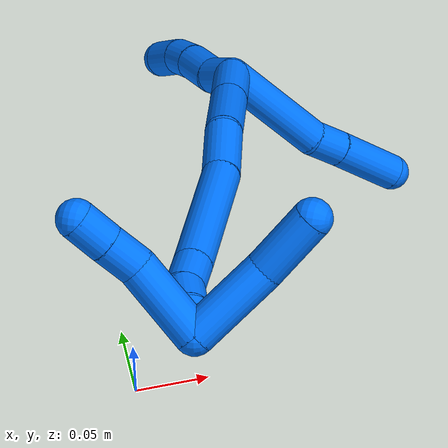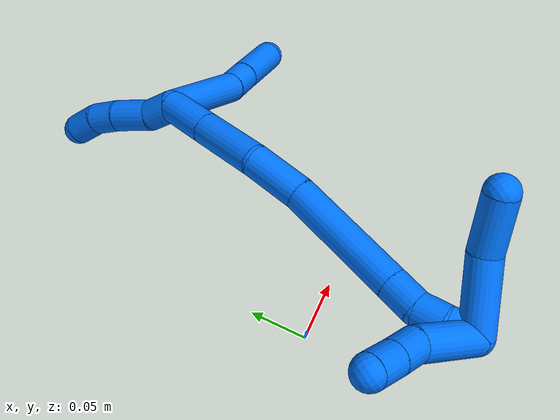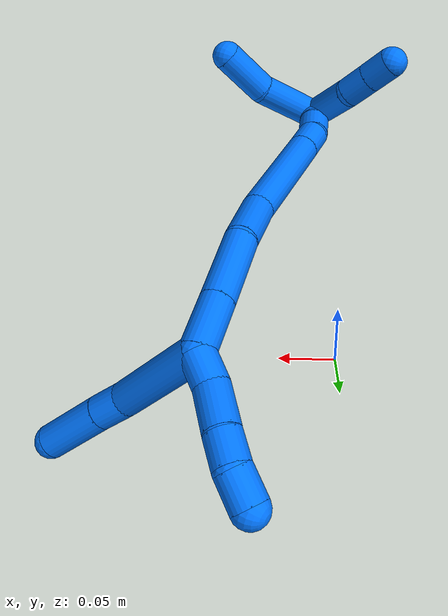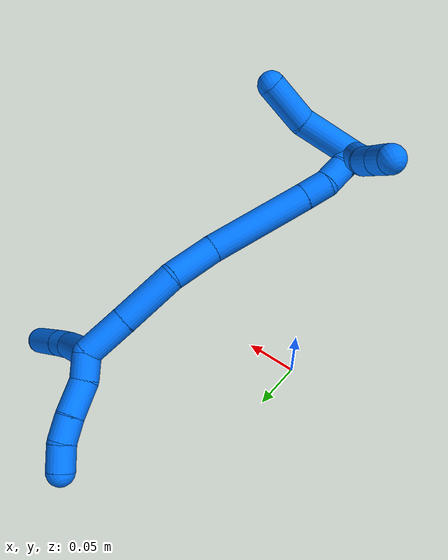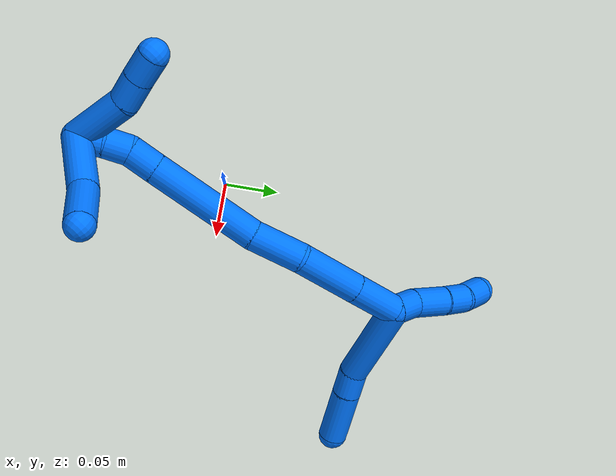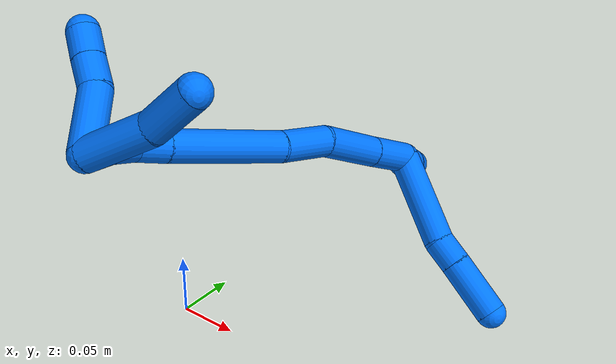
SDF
<sdf version="1.7">
 <world name="default">
  <model name="14">
   <static>0</static>
   <link name="14">
    <collision name="collision-cylinder-e_1_2_8">
     <pose>0.030309 0.001942 0.024163 -0.080199 0.896186 -0.038568</pose>
     <geometry><cylinder><radius>0.0125</radius><length>0.077622</length></cylinder></geometry>
     <surface>
      <friction><ode><mu>1.16</mu><mu2>1.16</mu2><slip1>0</slip1><slip2>0</slip2></ode></friction>
      <contact><ode><kp>1e+06</kp><kd>1</kd><max_vel>0</max_vel><min_depth>0.001</min_depth></ode></contact>
     </surface>
    </collision>
    <visual name="visual-cylinder-e_1_2_8">
     <pose>0.030309 0.001942 0.024163 -0.080199 0.896186 -0.038568</pose>
     <geometry><cylinder><radius>0.0125</radius><length>0.077622</length></cylinder></geometry>
     <material><ambient>0 0.462745 1 1</ambient></material>
    </visual>
    <collision name="collision-cylinder-e_2_8_9">
     <pose>0.068794 0.007228 0.055898 -0.415907 0.779184 -0.172836</pose>
     <geometry><cylinder><radius>0.0125</radius><length>0.023269</length></cylinder></geometry>
     <surface>
      <friction><ode><mu>1.16</mu><mu2>1.16</mu2><slip1>0</slip1><slip2>0</slip2></ode></friction>
      <contact><ode><kp>1e+06</kp><kd>1</kd><max_vel>0</max_vel><min_depth>0.001</min_depth></ode></contact>
     </surface>
    </collision>
    <visual name="visual-cylinder-e_2_8_9">
     <pose>0.068794 0.007228 0.055898 -0.415907 0.779184 -0.172836</pose>
     <geometry><cylinder><radius>0.0125</radius><length>0.023269</length></cylinder></geometry>
     <material><ambient>0 0.462745 1 1</ambient></material>
    </visual>
    <collision name="collision-cylinder-e_3_9_6">
     <pose>0.094902 0.017401 0.078792 -0.419221 0.81873 -0.18408</pose>
     <geometry><cylinder><radius>0.0125</radius><length>0.049109</length></cylinder></geometry>
     <surface>
      <friction><ode><mu>1.16</mu><mu2>1.16</mu2><slip1>0</slip1><slip2>0</slip2></ode></friction>
      <contact><ode><kp>1e+06</kp><kd>1</kd><max_vel>0</max_vel><min_depth>0.001</min_depth></ode></contact>
     </surface>
    </collision>
    <visual name="visual-cylinder-e_3_9_6">
     <pose>0.094902 0.017401 0.078792 -0.419221 0.81873 -0.18408</pose>
     <geometry><cylinder><radius>0.0125</radius><length>0.049109</length></cylinder></geometry>
     <material><ambient>0 0.462745 1 1</ambient></material>
    </visual>
    <collision name="collision-cylinder-e_1_2_10">
     <pose>0.006076 0.003499 -0.00933 -2.78281 0.547586 -1.99491</pose>
     <geometry><cylinder><radius>0.0125</radius><length>0.023341</length></cylinder></geometry>
     <surface>
      <friction><ode><mu>1.16</mu><mu2>1.16</mu2><slip1>0</slip1><slip2>0</slip2></ode></friction>
      <contact><ode><kp>1e+06</kp><kd>1</kd><max_vel>0</max_vel><min_depth>0.001</min_depth></ode></contact>
     </surface>
    </collision>
    <visual name="visual-cylinder-e_1_2_10">
     <pose>0.006076 0.003499 -0.00933 -2.78281 0.547586 -1.99491</pose>
     <geometry><cylinder><radius>0.0125</radius><length>0.023341</length></cylinder></geometry>
     <material><ambient>0 0.462745 1 1</ambient></material>
    </visual>
    <collision name="collision-cylinder-e_2_10_11">
     <pose>0.017794 0.01601 -0.030061 -2.47271 0.370294 -0.988679</pose>
     <geometry><cylinder><radius>0.0125</radius><length>0.031179</length></cylinder></geometry>
     <surface>
      <friction><ode><mu>1.16</mu><mu2>1.16</mu2><slip1>0</slip1><slip2>0</slip2></ode></friction>
      <contact><ode><kp>1e+06</kp><kd>1</kd><max_vel>0</max_vel><min_depth>0.001</min_depth></ode></contact>
     </surface>
    </collision>
    <visual name="visual-cylinder-e_2_10_11">
     <pose>0.017794 0.01601 -0.030061 -2.47271 0.370294 -0.988679</pose>
     <geometry><cylinder><radius>0.0125</radius><length>0.031179</length></cylinder></geometry>
     <material><ambient>0 0.462745 1 1</ambient></material>
    </visual>
    <collision name="collision-cylinder-e_3_11_12">
     <pose>0.028366 0.030476 -0.049783 -2.56137 0.460083 -1.33038</pose>
     <geometry><cylinder><radius>0.0125</radius><length>0.022208</length></cylinder></geometry>
     <surface>
      <friction><ode><mu>1.16</mu><mu2>1.16</mu2><slip1>0</slip1><slip2>0</slip2></ode></friction>
      <contact><ode><kp>1e+06</kp><kd>1</kd><max_vel>0</max_vel><min_depth>0.001</min_depth></ode></contact>
     </surface>
    </collision>
    <visual name="visual-cylinder-e_3_11_12">
     <pose>0.028366 0.030476 -0.049783 -2.56137 0.460083 -1.33038</pose>
     <geometry><cylinder><radius>0.0125</radius><length>0.022208</length></cylinder></geometry>
     <material><ambient>0 0.462745 1 1</ambient></material>
    </visual>
    <collision name="collision-cylinder-e_4_12_5">
     <pose>0.039814 0.03875 -0.067322 -2.84474 0.594522 -2.23341</pose>
     <geometry><cylinder><radius>0.0125</radius><length>0.023272</length></cylinder></geometry>
     <surface>
      <friction><ode><mu>1.16</mu><mu2>1.16</mu2><slip1>0</slip1><slip2>0</slip2></ode></friction>
      <contact><ode><kp>1e+06</kp><kd>1</kd><max_vel>0</max_vel><min_depth>0.001</min_depth></ode></contact>
     </surface>
    </collision>
    <visual name="visual-cylinder-e_4_12_5">
     <pose>0.039814 0.03875 -0.067322 -2.84474 0.594522 -2.23341</pose>
     <geometry><cylinder><radius>0.0125</radius><length>0.023272</length></cylinder></geometry>
     <material><ambient>0 0.462745 1 1</ambient></material>
    </visual>
    <collision name="collision-cylinder-e_1_2_13">
     <pose>-0.008924 -0.017534 0.006248 1.2285 -0.44707 -0.317955</pose>
     <geometry><cylinder><radius>0.0125</radius><length>0.041285</length></cylinder></geometry>
     <surface>
      <friction><ode><mu>1.16</mu><mu2>1.16</mu2><slip1>0</slip1><slip2>0</slip2></ode></friction>
      <contact><ode><kp>1e+06</kp><kd>1</kd><max_vel>0</max_vel><min_depth>0.001</min_depth></ode></contact>
     </surface>
    </collision>
    <visual name="visual-cylinder-e_1_2_13">
     <pose>-0.008924 -0.017534 0.006248 1.2285 -0.44707 -0.317955</pose>
     <geometry><cylinder><radius>0.0125</radius><length>0.041285</length></cylinder></geometry>
     <material><ambient>0 0.462745 1 1</ambient></material>
    </visual>
    <collision name="collision-cylinder-e_2_13_14">
     <pose>-0.030192 -0.058094 0.020786 1.2252 -0.467137 -0.331339</pose>
     <geometry><cylinder><radius>0.0125</radius><length>0.05482</length></cylinder></geometry>
     <surface>
      <friction><ode><mu>1.16</mu><mu2>1.16</mu2><slip1>0</slip1><slip2>0</slip2></ode></friction>
      <contact><ode><kp>1e+06</kp><kd>1</kd><max_vel>0</max_vel><min_depth>0.001</min_depth></ode></contact>
     </surface>
    </collision>
    <visual name="visual-cylinder-e_2_13_14">
     <pose>-0.030192 -0.058094 0.020786 1.2252 -0.467137 -0.331339</pose>
     <geometry><cylinder><radius>0.0125</radius><length>0.05482</length></cylinder></geometry>
     <material><ambient>0 0.462745 1 1</ambient></material>
    </visual>
    <collision name="collision-cylinder-e_3_14_15">
     <pose>-0.046818 -0.10129 0.035804 1.24889 -0.198726 -0.143437</pose>
     <geometry><cylinder><radius>0.0125</radius><length>0.043377</length></cylinder></geometry>
     <surface>
      <friction><ode><mu>1.16</mu><mu2>1.16</mu2><slip1>0</slip1><slip2>0</slip2></ode></friction>
      <contact><ode><kp>1e+06</kp><kd>1</kd><max_vel>0</max_vel><min_depth>0.001</min_depth></ode></contact>
     </surface>
    </collision>
    <visual name="visual-cylinder-e_3_14_15">
     <pose>-0.046818 -0.10129 0.035804 1.24889 -0.198726 -0.143437</pose>
     <geometry><cylinder><radius>0.0125</radius><length>0.043377</length></cylinder></geometry>
     <material><ambient>0 0.462745 1 1</ambient></material>
    </visual>
    <collision name="collision-cylinder-e_4_15_16">
     <pose>-0.064259 -0.165818 0.05082 1.38604 -0.28375 -0.236124</pose>
     <geometry><cylinder><radius>0.0125</radius><length>0.09401</length></cylinder></geometry>
     <surface>
      <friction><ode><mu>1.16</mu><mu2>1.16</mu2><slip1>0</slip1><slip2>0</slip2></ode></friction>
      <contact><ode><kp>1e+06</kp><kd>1</kd><max_vel>0</max_vel><min_depth>0.001</min_depth></ode></contact>
     </surface>
    </collision>
    <visual name="visual-cylinder-e_4_15_16">
     <pose>-0.064259 -0.165818 0.05082 1.38604 -0.28375 -0.236124</pose>
     <geometry><cylinder><radius>0.0125</radius><length>0.09401</length></cylinder></geometry>
     <material><ambient>0 0.462745 1 1</ambient></material>
    </visual>
    <collision name="collision-cylinder-e_5_16_17">
     <pose>-0.081244 -0.221478 0.061192 1.38867 -0.321305 -0.268241</pose>
     <geometry><cylinder><radius>0.0125</radius><length>0.024226</length></cylinder></geometry>
     <surface>
      <friction><ode><mu>1.16</mu><mu2>1.16</mu2><slip1>0</slip1><slip2>0</slip2></ode></friction>
      <contact><ode><kp>1e+06</kp><kd>1</kd><max_vel>0</max_vel><min_depth>0.001</min_depth></ode></contact>
     </surface>
    </collision>
    <visual name="visual-cylinder-e_5_16_17">
     <pose>-0.081244 -0.221478 0.061192 1.38867 -0.321305 -0.268241</pose>
     <geometry><cylinder><radius>0.0125</radius><length>0.024226</length></cylinder></geometry>
     <material><ambient>0 0.462745 1 1</ambient></material>
    </visual>
    <collision name="collision-cylinder-e_6_17_18">
     <pose>-0.087848 -0.241649 0.068164 1.06682 -0.267756 -0.158728</pose>
     <geometry><cylinder><radius>0.0125</radius><length>0.021003</length></cylinder></geometry>
     <surface>
      <friction><ode><mu>1.16</mu><mu2>1.16</mu2><slip1>0</slip1><slip2>0</slip2></ode></friction>
      <contact><ode><kp>1e+06</kp><kd>1</kd><max_vel>0</max_vel><min_depth>0.001</min_depth></ode></contact>
     </surface>
    </collision>
    <visual name="visual-cylinder-e_6_17_18">
     <pose>-0.087848 -0.241649 0.068164 1.06682 -0.267756 -0.158728</pose>
     <geometry><cylinder><radius>0.0125</radius><length>0.021003</length></cylinder></geometry>
     <material><ambient>0 0.462745 1 1</ambient></material>
    </visual>
    <collision name="collision-cylinder-e_7_18_1">
     <pose>-0.09138 -0.259644 0.078469 1.03535 -0.070989 -0.040438</pose>
     <geometry><cylinder><radius>0.0125</radius><length>0.021278</length></cylinder></geometry>
     <surface>
      <friction><ode><mu>1.16</mu><mu2>1.16</mu2><slip1>0</slip1><slip2>0</slip2></ode></friction>
      <contact><ode><kp>1e+06</kp><kd>1</kd><max_vel>0</max_vel><min_depth>0.001</min_depth></ode></contact>
     </surface>
    </collision>
    <visual name="visual-cylinder-e_7_18_1">
     <pose>-0.09138 -0.259644 0.078469 1.03535 -0.070989 -0.040438</pose>
     <geometry><cylinder><radius>0.0125</radius><length>0.021278</length></cylinder></geometry>
     <material><ambient>0 0.462745 1 1</ambient></material>
    </visual>
    <collision name="collision-cylinder-e_1_1_19">
     <pose>-0.108225 -0.259118 0.065279 -2.66294 -0.654718 1.89545</pose>
     <geometry><cylinder><radius>0.0125</radius><length>0.052847</length></cylinder></geometry>
     <surface>
      <friction><ode><mu>1.16</mu><mu2>1.16</mu2><slip1>0</slip1><slip2>0</slip2></ode></friction>
      <contact><ode><kp>1e+06</kp><kd>1</kd><max_vel>0</max_vel><min_depth>0.001</min_depth></ode></contact>
     </surface>
    </collision>
    <visual name="visual-cylinder-e_1_1_19">
     <pose>-0.108225 -0.259118 0.065279 -2.66294 -0.654718 1.89545</pose>
     <geometry><cylinder><radius>0.0125</radius><length>0.052847</length></cylinder></geometry>
     <material><ambient>0 0.462745 1 1</ambient></material>
    </visual>
    <collision name="collision-cylinder-e_2_19_20">
     <pose>-0.133039 -0.248986 0.038392 -3.08401 -0.810416 3.00752</pose>
     <geometry><cylinder><radius>0.0125</radius><length>0.024078</length></cylinder></geometry>
     <surface>
      <friction><ode><mu>1.16</mu><mu2>1.16</mu2><slip1>0</slip1><slip2>0</slip2></ode></friction>
      <contact><ode><kp>1e+06</kp><kd>1</kd><max_vel>0</max_vel><min_depth>0.001</min_depth></ode></contact>
     </surface>
    </collision>
    <visual name="visual-cylinder-e_2_19_20">
     <pose>-0.133039 -0.248986 0.038392 -3.08401 -0.810416 3.00752</pose>
     <geometry><cylinder><radius>0.0125</radius><length>0.024078</length></cylinder></geometry>
     <material><ambient>0 0.462745 1 1</ambient></material>
    </visual>
    <collision name="collision-cylinder-e_3_20_4">
     <pose>-0.150091 -0.247677 0.022168 -3.03723 -0.806517 2.89796</pose>
     <geometry><cylinder><radius>0.0125</radius><length>0.023075</length></cylinder></geometry>
     <surface>
      <friction><ode><mu>1.16</mu><mu2>1.16</mu2><slip1>0</slip1><slip2>0</slip2></ode></friction>
      <contact><ode><kp>1e+06</kp><kd>1</kd><max_vel>0</max_vel><min_depth>0.001</min_depth></ode></contact>
     </surface>
    </collision>
    <visual name="visual-cylinder-e_3_20_4">
     <pose>-0.150091 -0.247677 0.022168 -3.03723 -0.806517 2.89796</pose>
     <geometry><cylinder><radius>0.0125</radius><length>0.023075</length></cylinder></geometry>
     <material><ambient>0 0.462745 1 1</ambient></material>
    </visual>
    <collision name="collision-cylinder-e_1_1_21">
     <pose>-0.101746 -0.247762 0.10043 -0.903676 -0.345022 0.168727</pose>
     <geometry><cylinder><radius>0.0125</radius><length>0.056835</length></cylinder></geometry>
     <surface>
      <friction><ode><mu>1.16</mu><mu2>1.16</mu2><slip1>0</slip1><slip2>0</slip2></ode></friction>
      <contact><ode><kp>1e+06</kp><kd>1</kd><max_vel>0</max_vel><min_depth>0.001</min_depth></ode></contact>
     </surface>
    </collision>
    <visual name="visual-cylinder-e_1_1_21">
     <pose>-0.101746 -0.247762 0.10043 -0.903676 -0.345022 0.168727</pose>
     <geometry><cylinder><radius>0.0125</radius><length>0.056835</length></cylinder></geometry>
     <material><ambient>0 0.462745 1 1</ambient></material>
    </visual>
    <collision name="collision-cylinder-e_2_21_3">
     <pose>-0.123794 -0.214482 0.129649 -0.769289 -0.614098 0.255314</pose>
     <geometry><cylinder><radius>0.0125</radius><length>0.043165</length></cylinder></geometry>
     <surface>
      <friction><ode><mu>1.16</mu><mu2>1.16</mu2><slip1>0</slip1><slip2>0</slip2></ode></friction>
      <contact><ode><kp>1e+06</kp><kd>1</kd><max_vel>0</max_vel><min_depth>0.001</min_depth></ode></contact>
     </surface>
    </collision>
    <visual name="visual-cylinder-e_2_21_3">
     <pose>-0.123794 -0.214482 0.129649 -0.769289 -0.614098 0.255314</pose>
     <geometry><cylinder><radius>0.0125</radius><length>0.043165</length></cylinder></geometry>
     <material><ambient>0 0.462745 1 1</ambient></material>
    </visual>
    <collision name="collision-sphere-3">
     <pose>-0.13623 -0.202212 0.142321 0 -0 0</pose>
     <geometry><sphere><radius>0.0125</radius></sphere></geometry>
     <surface>
      <friction><ode><mu>1.16</mu><mu2>1.16</mu2><slip1>0</slip1><slip2>0</slip2></ode></friction>
      <contact><ode><kp>1e+06</kp><kd>1</kd><max_vel>0</max_vel><min_depth>0.001</min_depth></ode></contact>
     </surface>
    </collision>
    <visual name="visual-sphere-3">
     <pose>-0.13623 -0.202212 0.142321 0 -0 0</pose>
     <geometry><sphere><radius>0.0125</radius></sphere></geometry>
     <material><ambient>0 0.462745 1 1</ambient></material>
    </visual>
    <collision name="collision-sphere-21">
     <pose>-0.111358 -0.226753 0.116976 0 -0 0</pose>
     <geometry><sphere><radius>0.0125</radius></sphere></geometry>
     <surface>
      <friction><ode><mu>1.16</mu><mu2>1.16</mu2><slip1>0</slip1><slip2>0</slip2></ode></friction>
      <contact><ode><kp>1e+06</kp><kd>1</kd><max_vel>0</max_vel><min_depth>0.001</min_depth></ode></contact>
     </surface>
    </collision>
    <visual name="visual-sphere-21">
     <pose>-0.111358 -0.226753 0.116976 0 -0 0</pose>
     <geometry><sphere><radius>0.0125</radius></sphere></geometry>
     <material><ambient>0 0.462745 1 1</ambient></material>
    </visual>
    <collision name="collision-sphere-4">
     <pose>-0.158419 -0.246845 0.014227 0 -0 0</pose>
     <geometry><sphere><radius>0.0125</radius></sphere></geometry>
     <surface>
      <friction><ode><mu>1.16</mu><mu2>1.16</mu2><slip1>0</slip1><slip2>0</slip2></ode></friction>
      <contact><ode><kp>1e+06</kp><kd>1</kd><max_vel>0</max_vel><min_depth>0.001</min_depth></ode></contact>
     </surface>
    </collision>
    <visual name="visual-sphere-4">
     <pose>-0.158419 -0.246845 0.014227 0 -0 0</pose>
     <geometry><sphere><radius>0.0125</radius></sphere></geometry>
     <material><ambient>0 0.462745 1 1</ambient></material>
    </visual>
    <collision name="collision-sphere-20">
     <pose>-0.141762 -0.248509 0.030108 0 -0 0</pose>
     <geometry><sphere><radius>0.0125</radius></sphere></geometry>
     <surface>
      <friction><ode><mu>1.16</mu><mu2>1.16</mu2><slip1>0</slip1><slip2>0</slip2></ode></friction>
      <contact><ode><kp>1e+06</kp><kd>1</kd><max_vel>0</max_vel><min_depth>0.001</min_depth></ode></contact>
     </surface>
    </collision>
    <visual name="visual-sphere-20">
     <pose>-0.141762 -0.248509 0.030108 0 -0 0</pose>
     <geometry><sphere><radius>0.0125</radius></sphere></geometry>
     <material><ambient>0 0.462745 1 1</ambient></material>
    </visual>
    <collision name="collision-sphere-11">
     <pose>0.023435 0.025022 -0.041462 0 -0 0</pose>
     <geometry><sphere><radius>0.0125</radius></sphere></geometry>
     <surface>
      <friction><ode><mu>1.16</mu><mu2>1.16</mu2><slip1>0</slip1><slip2>0</slip2></ode></friction>
      <contact><ode><kp>1e+06</kp><kd>1</kd><max_vel>0</max_vel><min_depth>0.001</min_depth></ode></contact>
     </surface>
    </collision>
    <visual name="visual-sphere-11">
     <pose>0.023435 0.025022 -0.041462 0 -0 0</pose>
     <geometry><sphere><radius>0.0125</radius></sphere></geometry>
     <material><ambient>0 0.462745 1 1</ambient></material>
    </visual>
    <collision name="collision-sphere-10">
     <pose>0.012152 0.006997 -0.018659 0 -0 0</pose>
     <geometry><sphere><radius>0.0125</radius></sphere></geometry>
     <surface>
      <friction><ode><mu>1.16</mu><mu2>1.16</mu2><slip1>0</slip1><slip2>0</slip2></ode></friction>
      <contact><ode><kp>1e+06</kp><kd>1</kd><max_vel>0</max_vel><min_depth>0.001</min_depth></ode></contact>
     </surface>
    </collision>
    <visual name="visual-sphere-10">
     <pose>0.012152 0.006997 -0.018659 0 -0 0</pose>
     <geometry><sphere><radius>0.0125</radius></sphere></geometry>
     <material><ambient>0 0.462745 1 1</ambient></material>
    </visual>
    <collision name="collision-sphere-6">
     <pose>0.112833 0.024229 0.094114 0 -0 0</pose>
     <geometry><sphere><radius>0.0125</radius></sphere></geometry>
     <surface>
      <friction><ode><mu>1.16</mu><mu2>1.16</mu2><slip1>0</slip1><slip2>0</slip2></ode></friction>
      <contact><ode><kp>1e+06</kp><kd>1</kd><max_vel>0</max_vel><min_depth>0.001</min_depth></ode></contact>
     </surface>
    </collision>
    <visual name="visual-sphere-6">
     <pose>0.112833 0.024229 0.094114 0 -0 0</pose>
     <geometry><sphere><radius>0.0125</radius></sphere></geometry>
     <material><ambient>0 0.462745 1 1</ambient></material>
    </visual>
    <collision name="collision-sphere-9">
     <pose>0.07697 0.010573 0.063471 0 -0 0</pose>
     <geometry><sphere><radius>0.0125</radius></sphere></geometry>
     <surface>
      <friction><ode><mu>1.16</mu><mu2>1.16</mu2><slip1>0</slip1><slip2>0</slip2></ode></friction>
      <contact><ode><kp>1e+06</kp><kd>1</kd><max_vel>0</max_vel><min_depth>0.001</min_depth></ode></contact>
     </surface>
    </collision>
    <visual name="visual-sphere-9">
     <pose>0.07697 0.010573 0.063471 0 -0 0</pose>
     <geometry><sphere><radius>0.0125</radius></sphere></geometry>
     <material><ambient>0 0.462745 1 1</ambient></material>
    </visual>
    <collision name="collision-sphere-2">
     <geometry><sphere><radius>0.0125</radius></sphere></geometry>
     <surface>
      <friction><ode><mu>1.16</mu><mu2>1.16</mu2><slip1>0</slip1><slip2>0</slip2></ode></friction>
      <contact><ode><kp>1e+06</kp><kd>1</kd><max_vel>0</max_vel><min_depth>0.001</min_depth></ode></contact>
     </surface>
    </collision>
    <visual name="visual-sphere-2">
     <geometry><sphere><radius>0.0125</radius></sphere></geometry>
     <material><ambient>0 0.462745 1 1</ambient></material>
    </visual>
    <collision name="collision-sphere-19">
     <pose>-0.124316 -0.249464 0.046675 0 -0 0</pose>
     <geometry><sphere><radius>0.0125</radius></sphere></geometry>
     <surface>
      <friction><ode><mu>1.16</mu><mu2>1.16</mu2><slip1>0</slip1><slip2>0</slip2></ode></friction>
      <contact><ode><kp>1e+06</kp><kd>1</kd><max_vel>0</max_vel><min_depth>0.001</min_depth></ode></contact>
     </surface>
    </collision>
    <visual name="visual-sphere-19">
     <pose>-0.124316 -0.249464 0.046675 0 -0 0</pose>
     <geometry><sphere><radius>0.0125</radius></sphere></geometry>
     <material><ambient>0 0.462745 1 1</ambient></material>
    </visual>
    <collision name="collision-sphere-8">
     <pose>0.060619 0.003884 0.048326 0 -0 0</pose>
     <geometry><sphere><radius>0.0125</radius></sphere></geometry>
     <surface>
      <friction><ode><mu>1.16</mu><mu2>1.16</mu2><slip1>0</slip1><slip2>0</slip2></ode></friction>
      <contact><ode><kp>1e+06</kp><kd>1</kd><max_vel>0</max_vel><min_depth>0.001</min_depth></ode></contact>
     </surface>
    </collision>
    <visual name="visual-sphere-8">
     <pose>0.060619 0.003884 0.048326 0 -0 0</pose>
     <geometry><sphere><radius>0.0125</radius></sphere></geometry>
     <material><ambient>0 0.462745 1 1</ambient></material>
    </visual>
    <collision name="collision-sphere-12">
     <pose>0.033296 0.03593 -0.058104 0 -0 0</pose>
     <geometry><sphere><radius>0.0125</radius></sphere></geometry>
     <surface>
      <friction><ode><mu>1.16</mu><mu2>1.16</mu2><slip1>0</slip1><slip2>0</slip2></ode></friction>
      <contact><ode><kp>1e+06</kp><kd>1</kd><max_vel>0</max_vel><min_depth>0.001</min_depth></ode></contact>
     </surface>
    </collision>
    <visual name="visual-sphere-12">
     <pose>0.033296 0.03593 -0.058104 0 -0 0</pose>
     <geometry><sphere><radius>0.0125</radius></sphere></geometry>
     <material><ambient>0 0.462745 1 1</ambient></material>
    </visual>
    <collision name="collision-sphere-5">
     <pose>0.046331 0.04157 -0.076539 0 -0 0</pose>
     <geometry><sphere><radius>0.0125</radius></sphere></geometry>
     <surface>
      <friction><ode><mu>1.16</mu><mu2>1.16</mu2><slip1>0</slip1><slip2>0</slip2></ode></friction>
      <contact><ode><kp>1e+06</kp><kd>1</kd><max_vel>0</max_vel><min_depth>0.001</min_depth></ode></contact>
     </surface>
    </collision>
    <visual name="visual-sphere-5">
     <pose>0.046331 0.04157 -0.076539 0 -0 0</pose>
     <geometry><sphere><radius>0.0125</radius></sphere></geometry>
     <material><ambient>0 0.462745 1 1</ambient></material>
    </visual>
    <collision name="collision-sphere-13">
     <pose>-0.017849 -0.035068 0.012496 0 -0 0</pose>
     <geometry><sphere><radius>0.0125</radius></sphere></geometry>
     <surface>
      <friction><ode><mu>1.16</mu><mu2>1.16</mu2><slip1>0</slip1><slip2>0</slip2></ode></friction>
      <contact><ode><kp>1e+06</kp><kd>1</kd><max_vel>0</max_vel><min_depth>0.001</min_depth></ode></contact>
     </surface>
    </collision>
    <visual name="visual-sphere-13">
     <pose>-0.017849 -0.035068 0.012496 0 -0 0</pose>
     <geometry><sphere><radius>0.0125</radius></sphere></geometry>
     <material><ambient>0 0.462745 1 1</ambient></material>
    </visual>
    <collision name="collision-sphere-14">
     <pose>-0.042536 -0.081121 0.029077 0 -0 0</pose>
     <geometry><sphere><radius>0.0125</radius></sphere></geometry>
     <surface>
      <friction><ode><mu>1.16</mu><mu2>1.16</mu2><slip1>0</slip1><slip2>0</slip2></ode></friction>
      <contact><ode><kp>1e+06</kp><kd>1</kd><max_vel>0</max_vel><min_depth>0.001</min_depth></ode></contact>
     </surface>
    </collision>
    <visual name="visual-sphere-14">
     <pose>-0.042536 -0.081121 0.029077 0 -0 0</pose>
     <geometry><sphere><radius>0.0125</radius></sphere></geometry>
     <material><ambient>0 0.462745 1 1</ambient></material>
    </visual>
    <collision name="collision-sphere-15">
     <pose>-0.0511 -0.12146 0.04253 0 -0 0</pose>
     <geometry><sphere><radius>0.0125</radius></sphere></geometry>
     <surface>
      <friction><ode><mu>1.16</mu><mu2>1.16</mu2><slip1>0</slip1><slip2>0</slip2></ode></friction>
      <contact><ode><kp>1e+06</kp><kd>1</kd><max_vel>0</max_vel><min_depth>0.001</min_depth></ode></contact>
     </surface>
    </collision>
    <visual name="visual-sphere-15">
     <pose>-0.0511 -0.12146 0.04253 0 -0 0</pose>
     <geometry><sphere><radius>0.0125</radius></sphere></geometry>
     <material><ambient>0 0.462745 1 1</ambient></material>
    </visual>
    <collision name="collision-sphere-16">
     <pose>-0.077418 -0.210175 0.05911 0 -0 0</pose>
     <geometry><sphere><radius>0.0125</radius></sphere></geometry>
     <surface>
      <friction><ode><mu>1.16</mu><mu2>1.16</mu2><slip1>0</slip1><slip2>0</slip2></ode></friction>
      <contact><ode><kp>1e+06</kp><kd>1</kd><max_vel>0</max_vel><min_depth>0.001</min_depth></ode></contact>
     </surface>
    </collision>
    <visual name="visual-sphere-16">
     <pose>-0.077418 -0.210175 0.05911 0 -0 0</pose>
     <geometry><sphere><radius>0.0125</radius></sphere></geometry>
     <material><ambient>0 0.462745 1 1</ambient></material>
    </visual>
    <collision name="collision-sphere-17">
     <pose>-0.085069 -0.232781 0.063273 0 -0 0</pose>
     <geometry><sphere><radius>0.0125</radius></sphere></geometry>
     <surface>
      <friction><ode><mu>1.16</mu><mu2>1.16</mu2><slip1>0</slip1><slip2>0</slip2></ode></friction>
      <contact><ode><kp>1e+06</kp><kd>1</kd><max_vel>0</max_vel><min_depth>0.001</min_depth></ode></contact>
     </surface>
    </collision>
    <visual name="visual-sphere-17">
     <pose>-0.085069 -0.232781 0.063273 0 -0 0</pose>
     <geometry><sphere><radius>0.0125</radius></sphere></geometry>
     <material><ambient>0 0.462745 1 1</ambient></material>
    </visual>
    <collision name="collision-sphere-18">
     <pose>-0.090626 -0.250518 0.073055 0 -0 0</pose>
     <geometry><sphere><radius>0.0125</radius></sphere></geometry>
     <surface>
      <friction><ode><mu>1.16</mu><mu2>1.16</mu2><slip1>0</slip1><slip2>0</slip2></ode></friction>
      <contact><ode><kp>1e+06</kp><kd>1</kd><max_vel>0</max_vel><min_depth>0.001</min_depth></ode></contact>
     </surface>
    </collision>
    <visual name="visual-sphere-18">
     <pose>-0.090626 -0.250518 0.073055 0 -0 0</pose>
     <geometry><sphere><radius>0.0125</radius></sphere></geometry>
     <material><ambient>0 0.462745 1 1</ambient></material>
    </visual>
    <collision name="collision-sphere-1">
     <pose>-0.092135 -0.268771 0.083884 0 -0 0</pose>
     <geometry><sphere><radius>0.0125</radius></sphere></geometry>
     <surface>
      <friction><ode><mu>1.16</mu><mu2>1.16</mu2><slip1>0</slip1><slip2>0</slip2></ode></friction>
      <contact><ode><kp>1e+06</kp><kd>1</kd><max_vel>0</max_vel><min_depth>0.001</min_depth></ode></contact>
     </surface>
    </collision>
    <visual name="visual-sphere-1">
     <pose>-0.092135 -0.268771 0.083884 0 -0 0</pose>
     <geometry><sphere><radius>0.0125</radius></sphere></geometry>
     <material><ambient>0 0.462745 1 1</ambient></material>
    </visual>
    <inertial>
     <pose>-0.037998 -0.113689 0.042294 0 -0 0</pose>
     <mass>0.75</mass>
     <inertia><ixx>0.000131</ixx><ixy>0</ixy><ixz>0</ixz><iyy>9.2e-05</iyy><iyz>0</iyz><izz>8.4e-05</izz></inertia>
    </inertial>
   </link>
   <pose>0.105217 0.167484 0.109078 0.422091 1.41516 -0.131545</pose>
  </model>
 </world>
</sdf>
